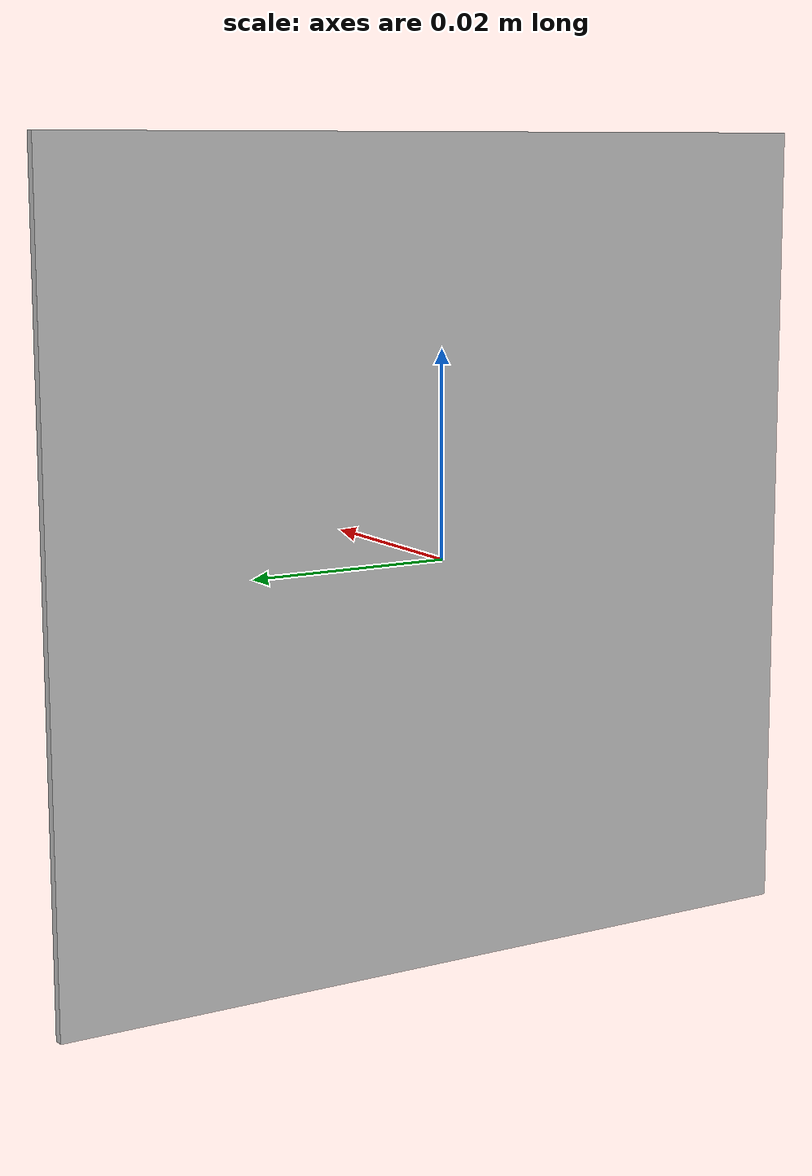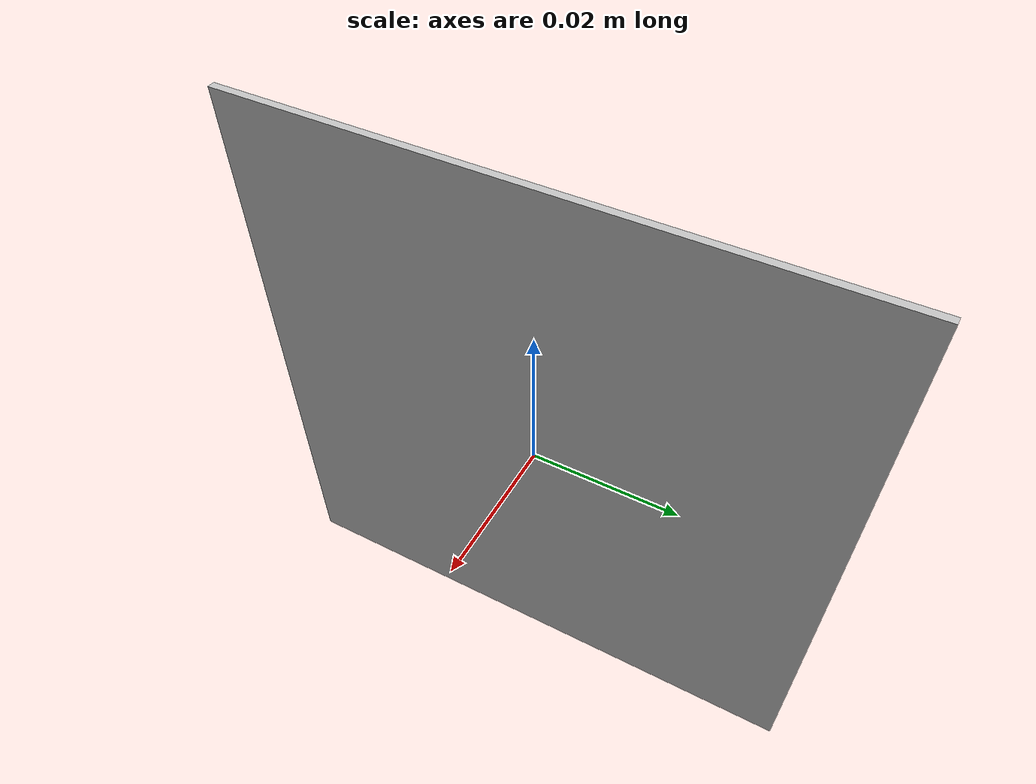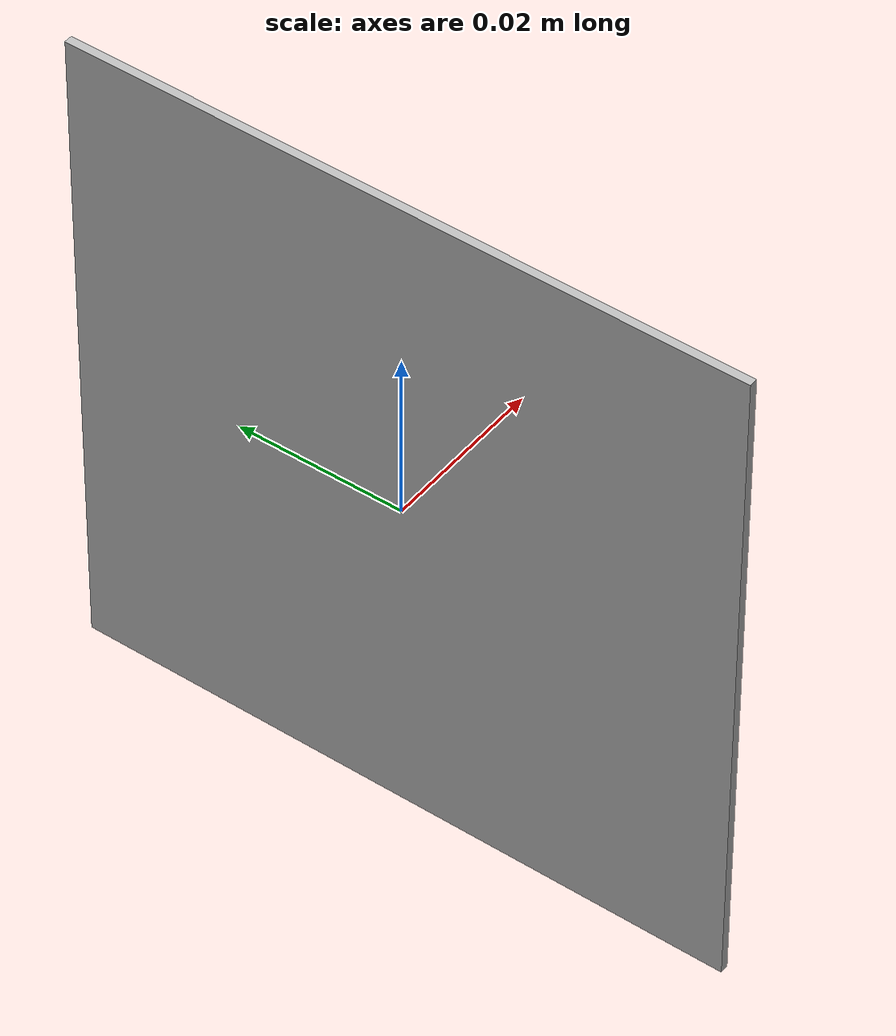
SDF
<?xml version="1.0" ?>
<sdf version="1.4">
  <model name="marker100_8cm">
    <static>1</static>
    <link name="marker">
      <inertial>
        <mass>0.1</mass>
        <inertia>
          <ixx>0.000000</ixx>
          <ixy>0.000000</ixy>
          <ixz>0.000000</ixz>
          <iyy>0.000000</iyy>
          <iyz>0.000000</iyz>
          <izz>0.000000</izz>
        </inertia>
      </inertial>
      <visual name="visual">
        <geometry>
          <box>
            <size>0.001 0.08 0.08</size>
            <!-- SIZE OF THE MARKER + MARGIN -->
          </box>
        </geometry>
        <material>
          <script>
	    <uri>model://marker100_8cm/material/scripts</uri>
	    <uri>model://marker100_8cm/material/textures</uri>
            <name>Aruco/marker100_8cm</name>
          </script>
        </material>
      </visual>
      <collision name="collision">
        <geometry>
          <box>
            <size>0.001 0.08 0.08</size>
            <!-- SIZE OF THE MARKER + MARGIN -->
          </box>
        </geometry>
        <surface>
          <bounce />
          <friction>
            <ode />
          </friction>
          <contact>
            <ode />
          </contact>
        </surface>
      </collision>
      <self_collide>1</self_collide>
      <kinematic>0</kinematic>
      <gravity>1</gravity>
    </link>
  </model>
</sdf>
